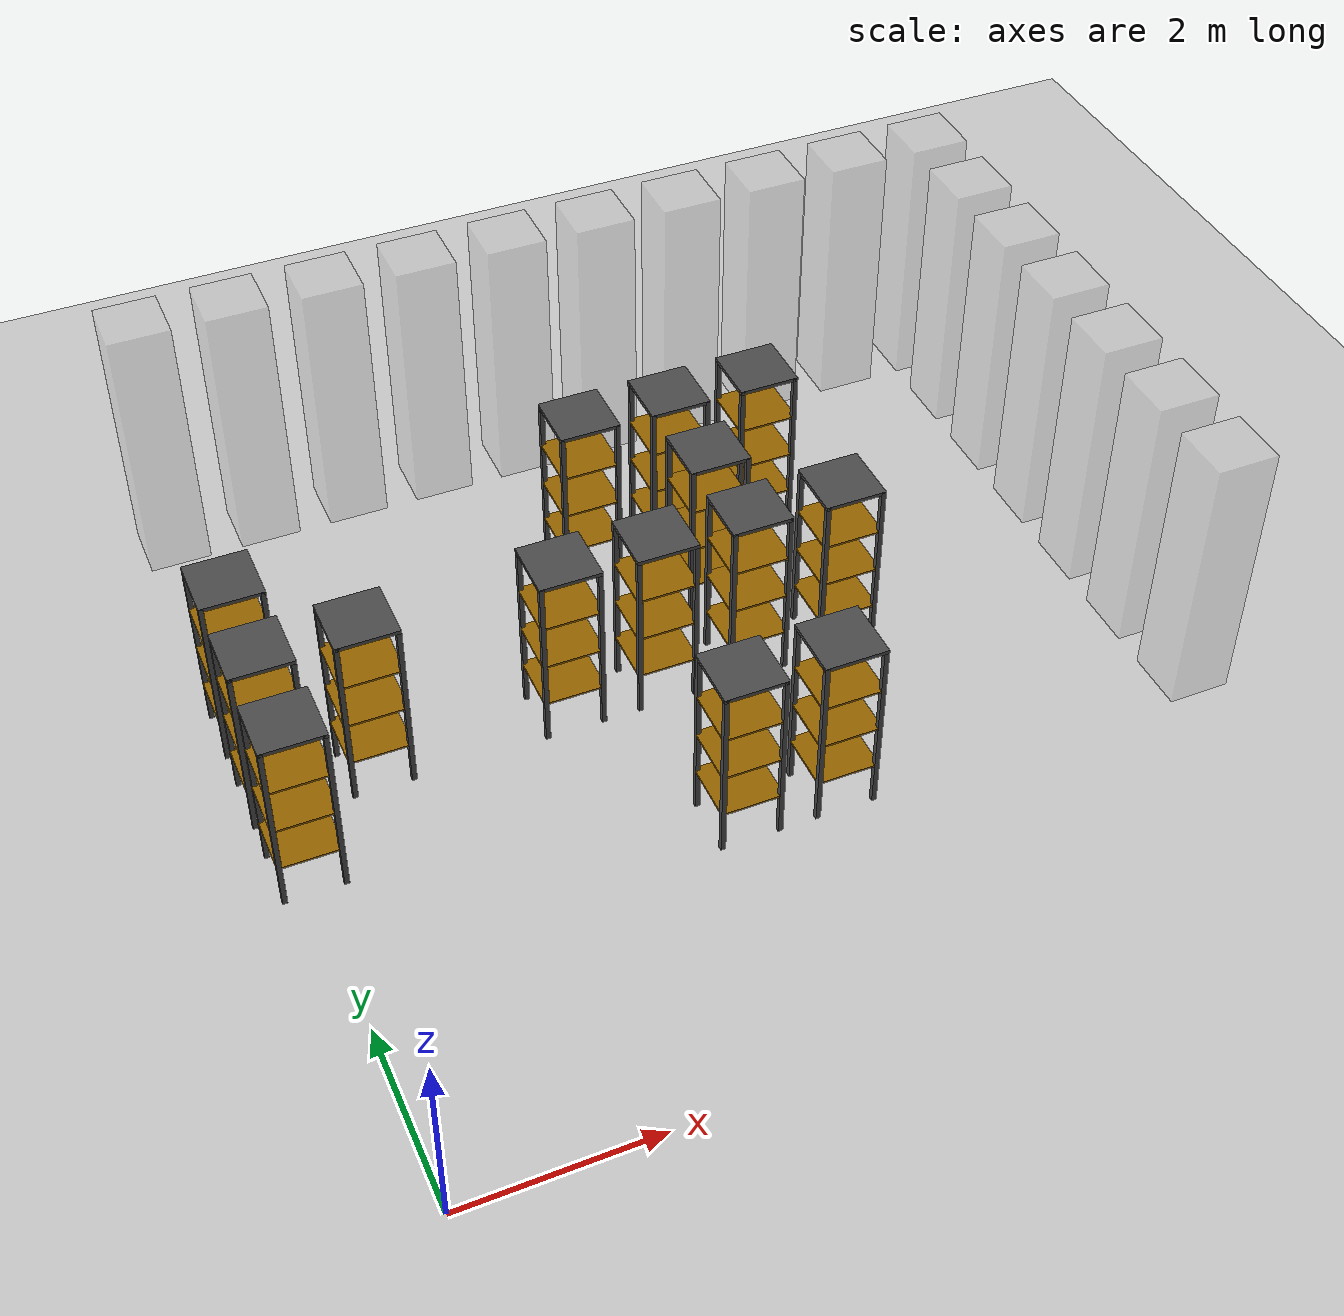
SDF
<sdf version="1.6">
 <world name="default">
  <model name="ground_plane">
   <static>1</static>
   <link name="link">
    <collision name="collision">
     <geometry><plane><normal>0 0 1</normal><size>50 50</size></plane></geometry>
     <surface><friction><ode><mu>100</mu><mu2>50</mu2></ode></friction></surface>
    </collision>
    <visual name="visual">
     <cast_shadows>0</cast_shadows>
     <geometry><plane><normal>0 0 1</normal><size>100 100</size></plane></geometry>
     <material>
      <script><uri>file://media/materials/scripts/gazebo.material</uri><name>Gazebo/Grey</name></script>
     </material>
    </visual>
    <velocity_decay><linear>0</linear><angular>0</angular></velocity_decay>
   </link>
  </model>
  <model name="warehouse_shelf_12_13">
   <static>1</static>
   <link name="main_block">
    <pose>0 0 1.25 0 -0 0</pose>
    <collision name="collision"><geometry><box><size>0.65 0.65 1.5</size></box></geometry></collision>
   </link>
   <link name="leg_1">
    <pose>0.3 0.3 1 0 -0 0</pose>
    <collision name="collision"><geometry><box><size>0.05 0.05 2</size></box></geometry></collision>
    <visual name="visual">
     <geometry><box><size>0.05 0.05 2</size></box></geometry>
     <material><ambient>0.2 0.2 0.2 1</ambient><diffuse>0.3 0.3 0.3 1</diffuse></material>
    </visual>
   </link>
   <link name="leg_2">
    <pose>-0.3 0.3 1 0 -0 0</pose>
    <collision name="collision"><geometry><box><size>0.05 0.05 2</size></box></geometry></collision>
    <visual name="visual">
     <geometry><box><size>0.05 0.05 2</size></box></geometry>
     <material><ambient>0.2 0.2 0.2 1</ambient><diffuse>0.3 0.3 0.3 1</diffuse></material>
    </visual>
   </link>
   <link name="leg_3">
    <pose>-0.3 -0.3 1 0 -0 0</pose>
    <collision name="collision"><geometry><box><size>0.05 0.05 2</size></box></geometry></collision>
    <visual name="visual">
     <geometry><box><size>0.05 0.05 2</size></box></geometry>
     <material><ambient>0.2 0.2 0.2 1</ambient><diffuse>0.3 0.3 0.3 1</diffuse></material>
    </visual>
   </link>
   <link name="leg_4">
    <pose>0.3 -0.3 1 0 -0 0</pose>
    <collision name="collision"><geometry><box><size>0.05 0.05 2</size></box></geometry></collision>
    <visual name="visual">
     <geometry><box><size>0.05 0.05 2</size></box></geometry>
     <material><ambient>0.2 0.2 0.2 1</ambient><diffuse>0.3 0.3 0.3 1</diffuse></material>
    </visual>
   </link>
   <link name="shelf_0">
    <pose>0 0 0.49 0 -0 0</pose>
    <visual name="visual">
     <geometry><box><size>0.649 0.649 0.02</size></box></geometry>
     <material><ambient>0.2 0.05 0 1</ambient><diffuse>0.6 0.4 0 1</diffuse></material>
    </visual>
   </link>
   <link name="shelf_1">
    <pose>0 0 0.99 0 -0 0</pose>
    <visual name="visual">
     <geometry><box><size>0.649 0.649 0.02</size></box></geometry>
     <material><ambient>0.2 0.05 0 1</ambient><diffuse>0.6 0.4 0 1</diffuse></material>
    </visual>
   </link>
   <link name="shelf_2">
    <pose>0 0 1.49 0 -0 0</pose>
    <visual name="visual">
     <geometry><box><size>0.649 0.649 0.02</size></box></geometry>
     <material><ambient>0.2 0.05 0 1</ambient><diffuse>0.6 0.4 0 1</diffuse></material>
    </visual>
   </link>
   <link name="shelf_top">
    <pose>0 0 1.99 0 -0 0</pose>
    <visual name="visual">
     <geometry><box><size>0.65 0.65 0.04</size></box></geometry>
     <material><ambient>0.2 0.2 0.2 1</ambient><diffuse>0.3 0.3 0.3 1</diffuse></material>
    </visual>
   </link>
   <pose>4 3 0 0 -0 0</pose>
  </model>
  <model name="warehouse_shelf_12_14">
   <static>1</static>
   <link name="main_block">
    <pose>0 0 1.25 0 -0 0</pose>
    <collision name="collision"><geometry><box><size>0.65 0.65 1.5</size></box></geometry></collision>
   </link>
   <link name="leg_1">
    <pose>0.3 0.3 1 0 -0 0</pose>
    <collision name="collision"><geometry><box><size>0.05 0.05 2</size></box></geometry></collision>
    <visual name="visual">
     <geometry><box><size>0.05 0.05 2</size></box></geometry>
     <material><ambient>0.2 0.2 0.2 1</ambient><diffuse>0.3 0.3 0.3 1</diffuse></material>
    </visual>
   </link>
   <link name="leg_2">
    <pose>-0.3 0.3 1 0 -0 0</pose>
    <collision name="collision"><geometry><box><size>0.05 0.05 2</size></box></geometry></collision>
    <visual name="visual">
     <geometry><box><size>0.05 0.05 2</size></box></geometry>
     <material><ambient>0.2 0.2 0.2 1</ambient><diffuse>0.3 0.3 0.3 1</diffuse></material>
    </visual>
   </link>
   <link name="leg_3">
    <pose>-0.3 -0.3 1 0 -0 0</pose>
    <collision name="collision"><geometry><box><size>0.05 0.05 2</size></box></geometry></collision>
    <visual name="visual">
     <geometry><box><size>0.05 0.05 2</size></box></geometry>
     <material><ambient>0.2 0.2 0.2 1</ambient><diffuse>0.3 0.3 0.3 1</diffuse></material>
    </visual>
   </link>
   <link name="leg_4">
    <pose>0.3 -0.3 1 0 -0 0</pose>
    <collision name="collision"><geometry><box><size>0.05 0.05 2</size></box></geometry></collision>
    <visual name="visual">
     <geometry><box><size>0.05 0.05 2</size></box></geometry>
     <material><ambient>0.2 0.2 0.2 1</ambient><diffuse>0.3 0.3 0.3 1</diffuse></material>
    </visual>
   </link>
   <link name="shelf_0">
    <pose>0 0 0.49 0 -0 0</pose>
    <visual name="visual">
     <geometry><box><size>0.649 0.649 0.02</size></box></geometry>
     <material><ambient>0.2 0.05 0 1</ambient><diffuse>0.6 0.4 0 1</diffuse></material>
    </visual>
   </link>
   <link name="shelf_1">
    <pose>0 0 0.99 0 -0 0</pose>
    <visual name="visual">
     <geometry><box><size>0.649 0.649 0.02</size></box></geometry>
     <material><ambient>0.2 0.05 0 1</ambient><diffuse>0.6 0.4 0 1</diffuse></material>
    </visual>
   </link>
   <link name="shelf_2">
    <pose>0 0 1.49 0 -0 0</pose>
    <visual name="visual">
     <geometry><box><size>0.649 0.649 0.02</size></box></geometry>
     <material><ambient>0.2 0.05 0 1</ambient><diffuse>0.6 0.4 0 1</diffuse></material>
    </visual>
   </link>
   <link name="shelf_top">
    <pose>0 0 1.99 0 -0 0</pose>
    <visual name="visual">
     <geometry><box><size>0.65 0.65 0.04</size></box></geometry>
     <material><ambient>0.2 0.2 0.2 1</ambient><diffuse>0.3 0.3 0.3 1</diffuse></material>
    </visual>
   </link>
   <pose>5 3 0 0 -0 0</pose>
  </model>
  <model name="pole_12_18">
   <static>1</static>
   <link name="main_block">
    <pose>0 0 1.5 0 -0 0</pose>
    <collision name="collision"><geometry><box><size>0.65 0.65 3</size></box></geometry></collision>
    <visual name="visual">
     <geometry><box><size>0.65 0.65 3</size></box></geometry>
     <material><ambient>0.5 0.5 0.5 0.25</ambient><diffuse>0.75 0.75 0.75 0.25</diffuse></material>
    </visual>
   </link>
   <pose>9 3 0 0 -0 0</pose>
  </model>
  <model name="warehouse_shelf_13_9">
   <static>1</static>
   <link name="main_block">
    <pose>0 0 1.25 0 -0 0</pose>
    <collision name="collision"><geometry><box><size>0.65 0.65 1.5</size></box></geometry></collision>
   </link>
   <link name="leg_1">
    <pose>0.3 0.3 1 0 -0 0</pose>
    <collision name="collision"><geometry><box><size>0.05 0.05 2</size></box></geometry></collision>
    <visual name="visual">
     <geometry><box><size>0.05 0.05 2</size></box></geometry>
     <material><ambient>0.2 0.2 0.2 1</ambient><diffuse>0.3 0.3 0.3 1</diffuse></material>
    </visual>
   </link>
   <link name="leg_2">
    <pose>-0.3 0.3 1 0 -0 0</pose>
    <collision name="collision"><geometry><box><size>0.05 0.05 2</size></box></geometry></collision>
    <visual name="visual">
     <geometry><box><size>0.05 0.05 2</size></box></geometry>
     <material><ambient>0.2 0.2 0.2 1</ambient><diffuse>0.3 0.3 0.3 1</diffuse></material>
    </visual>
   </link>
   <link name="leg_3">
    <pose>-0.3 -0.3 1 0 -0 0</pose>
    <collision name="collision"><geometry><box><size>0.05 0.05 2</size></box></geometry></collision>
    <visual name="visual">
     <geometry><box><size>0.05 0.05 2</size></box></geometry>
     <material><ambient>0.2 0.2 0.2 1</ambient><diffuse>0.3 0.3 0.3 1</diffuse></material>
    </visual>
   </link>
   <link name="leg_4">
    <pose>0.3 -0.3 1 0 -0 0</pose>
    <collision name="collision"><geometry><box><size>0.05 0.05 2</size></box></geometry></collision>
    <visual name="visual">
     <geometry><box><size>0.05 0.05 2</size></box></geometry>
     <material><ambient>0.2 0.2 0.2 1</ambient><diffuse>0.3 0.3 0.3 1</diffuse></material>
    </visual>
   </link>
   <link name="shelf_0">
    <pose>0 0 0.49 0 -0 0</pose>
    <visual name="visual">
     <geometry><box><size>0.649 0.649 0.02</size></box></geometry>
     <material><ambient>0.2 0.05 0 1</ambient><diffuse>0.6 0.4 0 1</diffuse></material>
    </visual>
   </link>
   <link name="shelf_1">
    <pose>0 0 0.99 0 -0 0</pose>
    <visual name="visual">
     <geometry><box><size>0.649 0.649 0.02</size></box></geometry>
     <material><ambient>0.2 0.05 0 1</ambient><diffuse>0.6 0.4 0 1</diffuse></material>
    </visual>
   </link>
   <link name="shelf_2">
    <pose>0 0 1.49 0 -0 0</pose>
    <visual name="visual">
     <geometry><box><size>0.649 0.649 0.02</size></box></geometry>
     <material><ambient>0.2 0.05 0 1</ambient><diffuse>0.6 0.4 0 1</diffuse></material>
    </visual>
   </link>
   <link name="shelf_top">
    <pose>0 0 1.99 0 -0 0</pose>
    <visual name="visual">
     <geometry><box><size>0.65 0.65 0.04</size></box></geometry>
     <material><ambient>0.2 0.2 0.2 1</ambient><diffuse>0.3 0.3 0.3 1</diffuse></material>
    </visual>
   </link>
   <pose>0 4 0 0 -0 0</pose>
  </model>
  <model name="pole_13_18">
   <static>1</static>
   <link name="main_block">
    <pose>0 0 1.5 0 -0 0</pose>
    <collision name="collision"><geometry><box><size>0.65 0.65 3</size></box></geometry></collision>
    <visual name="visual">
     <geometry><box><size>0.65 0.65 3</size></box></geometry>
     <material><ambient>0.5 0.5 0.5 0.25</ambient><diffuse>0.75 0.75 0.75 0.25</diffuse></material>
    </visual>
   </link>
   <pose>9 4 0 0 -0 0</pose>
  </model>
  <model name="warehouse_shelf_14_9">
   <static>1</static>
   <link name="main_block">
    <pose>0 0 1.25 0 -0 0</pose>
    <collision name="collision"><geometry><box><size>0.65 0.65 1.5</size></box></geometry></collision>
   </link>
   <link name="leg_1">
    <pose>0.3 0.3 1 0 -0 0</pose>
    <collision name="collision"><geometry><box><size>0.05 0.05 2</size></box></geometry></collision>
    <visual name="visual">
     <geometry><box><size>0.05 0.05 2</size></box></geometry>
     <material><ambient>0.2 0.2 0.2 1</ambient><diffuse>0.3 0.3 0.3 1</diffuse></material>
    </visual>
   </link>
   <link name="leg_2">
    <pose>-0.3 0.3 1 0 -0 0</pose>
    <collision name="collision"><geometry><box><size>0.05 0.05 2</size></box></geometry></collision>
    <visual name="visual">
     <geometry><box><size>0.05 0.05 2</size></box></geometry>
     <material><ambient>0.2 0.2 0.2 1</ambient><diffuse>0.3 0.3 0.3 1</diffuse></material>
    </visual>
   </link>
   <link name="leg_3">
    <pose>-0.3 -0.3 1 0 -0 0</pose>
    <collision name="collision"><geometry><box><size>0.05 0.05 2</size></box></geometry></collision>
    <visual name="visual">
     <geometry><box><size>0.05 0.05 2</size></box></geometry>
     <material><ambient>0.2 0.2 0.2 1</ambient><diffuse>0.3 0.3 0.3 1</diffuse></material>
    </visual>
   </link>
   <link name="leg_4">
    <pose>0.3 -0.3 1 0 -0 0</pose>
    <collision name="collision"><geometry><box><size>0.05 0.05 2</size></box></geometry></collision>
    <visual name="visual">
     <geometry><box><size>0.05 0.05 2</size></box></geometry>
     <material><ambient>0.2 0.2 0.2 1</ambient><diffuse>0.3 0.3 0.3 1</diffuse></material>
    </visual>
   </link>
   <link name="shelf_0">
    <pose>0 0 0.49 0 -0 0</pose>
    <visual name="visual">
     <geometry><box><size>0.649 0.649 0.02</size></box></geometry>
     <material><ambient>0.2 0.05 0 1</ambient><diffuse>0.6 0.4 0 1</diffuse></material>
    </visual>
   </link>
   <link name="shelf_1">
    <pose>0 0 0.99 0 -0 0</pose>
    <visual name="visual">
     <geometry><box><size>0.649 0.649 0.02</size></box></geometry>
     <material><ambient>0.2 0.05 0 1</ambient><diffuse>0.6 0.4 0 1</diffuse></material>
    </visual>
   </link>
   <link name="shelf_2">
    <pose>0 0 1.49 0 -0 0</pose>
    <visual name="visual">
     <geometry><box><size>0.649 0.649 0.02</size></box></geometry>
     <material><ambient>0.2 0.05 0 1</ambient><diffuse>0.6 0.4 0 1</diffuse></material>
    </visual>
   </link>
   <link name="shelf_top">
    <pose>0 0 1.99 0 -0 0</pose>
    <visual name="visual">
     <geometry><box><size>0.65 0.65 0.04</size></box></geometry>
     <material><ambient>0.2 0.2 0.2 1</ambient><diffuse>0.3 0.3 0.3 1</diffuse></material>
    </visual>
   </link>
   <pose>0 5 0 0 -0 0</pose>
  </model>
  <model name="warehouse_shelf_14_10">
   <static>1</static>
   <link name="main_block">
    <pose>0 0 1.25 0 -0 0</pose>
    <collision name="collision"><geometry><box><size>0.65 0.65 1.5</size></box></geometry></collision>
   </link>
   <link name="leg_1">
    <pose>0.3 0.3 1 0 -0 0</pose>
    <collision name="collision"><geometry><box><size>0.05 0.05 2</size></box></geometry></collision>
    <visual name="visual">
     <geometry><box><size>0.05 0.05 2</size></box></geometry>
     <material><ambient>0.2 0.2 0.2 1</ambient><diffuse>0.3 0.3 0.3 1</diffuse></material>
    </visual>
   </link>
   <link name="leg_2">
    <pose>-0.3 0.3 1 0 -0 0</pose>
    <collision name="collision"><geometry><box><size>0.05 0.05 2</size></box></geometry></collision>
    <visual name="visual">
     <geometry><box><size>0.05 0.05 2</size></box></geometry>
     <material><ambient>0.2 0.2 0.2 1</ambient><diffuse>0.3 0.3 0.3 1</diffuse></material>
    </visual>
   </link>
   <link name="leg_3">
    <pose>-0.3 -0.3 1 0 -0 0</pose>
    <collision name="collision"><geometry><box><size>0.05 0.05 2</size></box></geometry></collision>
    <visual name="visual">
     <geometry><box><size>0.05 0.05 2</size></box></geometry>
     <material><ambient>0.2 0.2 0.2 1</ambient><diffuse>0.3 0.3 0.3 1</diffuse></material>
    </visual>
   </link>
   <link name="leg_4">
    <pose>0.3 -0.3 1 0 -0 0</pose>
    <collision name="collision"><geometry><box><size>0.05 0.05 2</size></box></geometry></collision>
    <visual name="visual">
     <geometry><box><size>0.05 0.05 2</size></box></geometry>
     <material><ambient>0.2 0.2 0.2 1</ambient><diffuse>0.3 0.3 0.3 1</diffuse></material>
    </visual>
   </link>
   <link name="shelf_0">
    <pose>0 0 0.49 0 -0 0</pose>
    <visual name="visual">
     <geometry><box><size>0.649 0.649 0.02</size></box></geometry>
     <material><ambient>0.2 0.05 0 1</ambient><diffuse>0.6 0.4 0 1</diffuse></material>
    </visual>
   </link>
   <link name="shelf_1">
    <pose>0 0 0.99 0 -0 0</pose>
    <visual name="visual">
     <geometry><box><size>0.649 0.649 0.02</size></box></geometry>
     <material><ambient>0.2 0.05 0 1</ambient><diffuse>0.6 0.4 0 1</diffuse></material>
    </visual>
   </link>
   <link name="shelf_2">
    <pose>0 0 1.49 0 -0 0</pose>
    <visual name="visual">
     <geometry><box><size>0.649 0.649 0.02</size></box></geometry>
     <material><ambient>0.2 0.05 0 1</ambient><diffuse>0.6 0.4 0 1</diffuse></material>
    </visual>
   </link>
   <link name="shelf_top">
    <pose>0 0 1.99 0 -0 0</pose>
    <visual name="visual">
     <geometry><box><size>0.65 0.65 0.04</size></box></geometry>
     <material><ambient>0.2 0.2 0.2 1</ambient><diffuse>0.3 0.3 0.3 1</diffuse></material>
    </visual>
   </link>
   <pose>1 5 0 0 -0 0</pose>
  </model>
  <model name="warehouse_shelf_14_12">
   <static>1</static>
   <link name="main_block">
    <pose>0 0 1.25 0 -0 0</pose>
    <collision name="collision"><geometry><box><size>0.65 0.65 1.5</size></box></geometry></collision>
   </link>
   <link name="leg_1">
    <pose>0.3 0.3 1 0 -0 0</pose>
    <collision name="collision"><geometry><box><size>0.05 0.05 2</size></box></geometry></collision>
    <visual name="visual">
     <geometry><box><size>0.05 0.05 2</size></box></geometry>
     <material><ambient>0.2 0.2 0.2 1</ambient><diffuse>0.3 0.3 0.3 1</diffuse></material>
    </visual>
   </link>
   <link name="leg_2">
    <pose>-0.3 0.3 1 0 -0 0</pose>
    <collision name="collision"><geometry><box><size>0.05 0.05 2</size></box></geometry></collision>
    <visual name="visual">
     <geometry><box><size>0.05 0.05 2</size></box></geometry>
     <material><ambient>0.2 0.2 0.2 1</ambient><diffuse>0.3 0.3 0.3 1</diffuse></material>
    </visual>
   </link>
   <link name="leg_3">
    <pose>-0.3 -0.3 1 0 -0 0</pose>
    <collision name="collision"><geometry><box><size>0.05 0.05 2</size></box></geometry></collision>
    <visual name="visual">
     <geometry><box><size>0.05 0.05 2</size></box></geometry>
     <material><ambient>0.2 0.2 0.2 1</ambient><diffuse>0.3 0.3 0.3 1</diffuse></material>
    </visual>
   </link>
   <link name="leg_4">
    <pose>0.3 -0.3 1 0 -0 0</pose>
    <collision name="collision"><geometry><box><size>0.05 0.05 2</size></box></geometry></collision>
    <visual name="visual">
     <geometry><box><size>0.05 0.05 2</size></box></geometry>
     <material><ambient>0.2 0.2 0.2 1</ambient><diffuse>0.3 0.3 0.3 1</diffuse></material>
    </visual>
   </link>
   <link name="shelf_0">
    <pose>0 0 0.49 0 -0 0</pose>
    <visual name="visual">
     <geometry><box><size>0.649 0.649 0.02</size></box></geometry>
     <material><ambient>0.2 0.05 0 1</ambient><diffuse>0.6 0.4 0 1</diffuse></material>
    </visual>
   </link>
   <link name="shelf_1">
    <pose>0 0 0.99 0 -0 0</pose>
    <visual name="visual">
     <geometry><box><size>0.649 0.649 0.02</size></box></geometry>
     <material><ambient>0.2 0.05 0 1</ambient><diffuse>0.6 0.4 0 1</diffuse></material>
    </visual>
   </link>
   <link name="shelf_2">
    <pose>0 0 1.49 0 -0 0</pose>
    <visual name="visual">
     <geometry><box><size>0.649 0.649 0.02</size></box></geometry>
     <material><ambient>0.2 0.05 0 1</ambient><diffuse>0.6 0.4 0 1</diffuse></material>
    </visual>
   </link>
   <link name="shelf_top">
    <pose>0 0 1.99 0 -0 0</pose>
    <visual name="visual">
     <geometry><box><size>0.65 0.65 0.04</size></box></geometry>
     <material><ambient>0.2 0.2 0.2 1</ambient><diffuse>0.3 0.3 0.3 1</diffuse></material>
    </visual>
   </link>
   <pose>3 5 0 0 -0 0</pose>
  </model>
  <model name="warehouse_shelf_14_13">
   <static>1</static>
   <link name="main_block">
    <pose>0 0 1.25 0 -0 0</pose>
    <collision name="collision"><geometry><box><size>0.65 0.65 1.5</size></box></geometry></collision>
   </link>
   <link name="leg_1">
    <pose>0.3 0.3 1 0 -0 0</pose>
    <collision name="collision"><geometry><box><size>0.05 0.05 2</size></box></geometry></collision>
    <visual name="visual">
     <geometry><box><size>0.05 0.05 2</size></box></geometry>
     <material><ambient>0.2 0.2 0.2 1</ambient><diffuse>0.3 0.3 0.3 1</diffuse></material>
    </visual>
   </link>
   <link name="leg_2">
    <pose>-0.3 0.3 1 0 -0 0</pose>
    <collision name="collision"><geometry><box><size>0.05 0.05 2</size></box></geometry></collision>
    <visual name="visual">
     <geometry><box><size>0.05 0.05 2</size></box></geometry>
     <material><ambient>0.2 0.2 0.2 1</ambient><diffuse>0.3 0.3 0.3 1</diffuse></material>
    </visual>
   </link>
   <link name="leg_3">
    <pose>-0.3 -0.3 1 0 -0 0</pose>
    <collision name="collision"><geometry><box><size>0.05 0.05 2</size></box></geometry></collision>
    <visual name="visual">
     <geometry><box><size>0.05 0.05 2</size></box></geometry>
     <material><ambient>0.2 0.2 0.2 1</ambient><diffuse>0.3 0.3 0.3 1</diffuse></material>
    </visual>
   </link>
   <link name="leg_4">
    <pose>0.3 -0.3 1 0 -0 0</pose>
    <collision name="collision"><geometry><box><size>0.05 0.05 2</size></box></geometry></collision>
    <visual name="visual">
     <geometry><box><size>0.05 0.05 2</size></box></geometry>
     <material><ambient>0.2 0.2 0.2 1</ambient><diffuse>0.3 0.3 0.3 1</diffuse></material>
    </visual>
   </link>
   <link name="shelf_0">
    <pose>0 0 0.49 0 -0 0</pose>
    <visual name="visual">
     <geometry><box><size>0.649 0.649 0.02</size></box></geometry>
     <material><ambient>0.2 0.05 0 1</ambient><diffuse>0.6 0.4 0 1</diffuse></material>
    </visual>
   </link>
   <link name="shelf_1">
    <pose>0 0 0.99 0 -0 0</pose>
    <visual name="visual">
     <geometry><box><size>0.649 0.649 0.02</size></box></geometry>
     <material><ambient>0.2 0.05 0 1</ambient><diffuse>0.6 0.4 0 1</diffuse></material>
    </visual>
   </link>
   <link name="shelf_2">
    <pose>0 0 1.49 0 -0 0</pose>
    <visual name="visual">
     <geometry><box><size>0.649 0.649 0.02</size></box></geometry>
     <material><ambient>0.2 0.05 0 1</ambient><diffuse>0.6 0.4 0 1</diffuse></material>
    </visual>
   </link>
   <link name="shelf_top">
    <pose>0 0 1.99 0 -0 0</pose>
    <visual name="visual">
     <geometry><box><size>0.65 0.65 0.04</size></box></geometry>
     <material><ambient>0.2 0.2 0.2 1</ambient><diffuse>0.3 0.3 0.3 1</diffuse></material>
    </visual>
   </link>
   <pose>4 5 0 0 -0 0</pose>
  </model>
  <model name="warehouse_shelf_14_14">
   <static>1</static>
   <link name="main_block">
    <pose>0 0 1.25 0 -0 0</pose>
    <collision name="collision"><geometry><box><size>0.65 0.65 1.5</size></box></geometry></collision>
   </link>
   <link name="leg_1">
    <pose>0.3 0.3 1 0 -0 0</pose>
    <collision name="collision"><geometry><box><size>0.05 0.05 2</size></box></geometry></collision>
    <visual name="visual">
     <geometry><box><size>0.05 0.05 2</size></box></geometry>
     <material><ambient>0.2 0.2 0.2 1</ambient><diffuse>0.3 0.3 0.3 1</diffuse></material>
    </visual>
   </link>
   <link name="leg_2">
    <pose>-0.3 0.3 1 0 -0 0</pose>
    <collision name="collision"><geometry><box><size>0.05 0.05 2</size></box></geometry></collision>
    <visual name="visual">
     <geometry><box><size>0.05 0.05 2</size></box></geometry>
     <material><ambient>0.2 0.2 0.2 1</ambient><diffuse>0.3 0.3 0.3 1</diffuse></material>
    </visual>
   </link>
   <link name="leg_3">
    <pose>-0.3 -0.3 1 0 -0 0</pose>
    <collision name="collision"><geometry><box><size>0.05 0.05 2</size></box></geometry></collision>
    <visual name="visual">
     <geometry><box><size>0.05 0.05 2</size></box></geometry>
     <material><ambient>0.2 0.2 0.2 1</ambient><diffuse>0.3 0.3 0.3 1</diffuse></material>
    </visual>
   </link>
   <link name="leg_4">
    <pose>0.3 -0.3 1 0 -0 0</pose>
    <collision name="collision"><geometry><box><size>0.05 0.05 2</size></box></geometry></collision>
    <visual name="visual">
     <geometry><box><size>0.05 0.05 2</size></box></geometry>
     <material><ambient>0.2 0.2 0.2 1</ambient><diffuse>0.3 0.3 0.3 1</diffuse></material>
    </visual>
   </link>
   <link name="shelf_0">
    <pose>0 0 0.49 0 -0 0</pose>
    <visual name="visual">
     <geometry><box><size>0.649 0.649 0.02</size></box></geometry>
     <material><ambient>0.2 0.05 0 1</ambient><diffuse>0.6 0.4 0 1</diffuse></material>
    </visual>
   </link>
   <link name="shelf_1">
    <pose>0 0 0.99 0 -0 0</pose>
    <visual name="visual">
     <geometry><box><size>0.649 0.649 0.02</size></box></geometry>
     <material><ambient>0.2 0.05 0 1</ambient><diffuse>0.6 0.4 0 1</diffuse></material>
    </visual>
   </link>
   <link name="shelf_2">
    <pose>0 0 1.49 0 -0 0</pose>
    <visual name="visual">
     <geometry><box><size>0.649 0.649 0.02</size></box></geometry>
     <material><ambient>0.2 0.05 0 1</ambient><diffuse>0.6 0.4 0 1</diffuse></material>
    </visual>
   </link>
   <link name="shelf_top">
    <pose>0 0 1.99 0 -0 0</pose>
    <visual name="visual">
     <geometry><box><size>0.65 0.65 0.04</size></box></geometry>
     <material><ambient>0.2 0.2 0.2 1</ambient><diffuse>0.3 0.3 0.3 1</diffuse></material>
    </visual>
   </link>
   <pose>5 5 0 0 -0 0</pose>
  </model>
  <model name="warehouse_shelf_14_15">
   <static>1</static>
   <link name="main_block">
    <pose>0 0 1.25 0 -0 0</pose>
    <collision name="collision"><geometry><box><size>0.65 0.65 1.5</size></box></geometry></collision>
   </link>
   <link name="leg_1">
    <pose>0.3 0.3 1 0 -0 0</pose>
    <collision name="collision"><geometry><box><size>0.05 0.05 2</size></box></geometry></collision>
    <visual name="visual">
     <geometry><box><size>0.05 0.05 2</size></box></geometry>
     <material><ambient>0.2 0.2 0.2 1</ambient><diffuse>0.3 0.3 0.3 1</diffuse></material>
    </visual>
   </link>
   <link name="leg_2">
    <pose>-0.3 0.3 1 0 -0 0</pose>
    <collision name="collision"><geometry><box><size>0.05 0.05 2</size></box></geometry></collision>
    <visual name="visual">
     <geometry><box><size>0.05 0.05 2</size></box></geometry>
     <material><ambient>0.2 0.2 0.2 1</ambient><diffuse>0.3 0.3 0.3 1</diffuse></material>
    </visual>
   </link>
   <link name="leg_3">
    <pose>-0.3 -0.3 1 0 -0 0</pose>
    <collision name="collision"><geometry><box><size>0.05 0.05 2</size></box></geometry></collision>
    <visual name="visual">
     <geometry><box><size>0.05 0.05 2</size></box></geometry>
     <material><ambient>0.2 0.2 0.2 1</ambient><diffuse>0.3 0.3 0.3 1</diffuse></material>
    </visual>
   </link>
   <link name="leg_4">
    <pose>0.3 -0.3 1 0 -0 0</pose>
    <collision name="collision"><geometry><box><size>0.05 0.05 2</size></box></geometry></collision>
    <visual name="visual">
     <geometry><box><size>0.05 0.05 2</size></box></geometry>
     <material><ambient>0.2 0.2 0.2 1</ambient><diffuse>0.3 0.3 0.3 1</diffuse></material>
    </visual>
   </link>
   <link name="shelf_0">
    <pose>0 0 0.49 0 -0 0</pose>
    <visual name="visual">
     <geometry><box><size>0.649 0.649 0.02</size></box></geometry>
     <material><ambient>0.2 0.05 0 1</ambient><diffuse>0.6 0.4 0 1</diffuse></material>
    </visual>
   </link>
   <link name="shelf_1">
    <pose>0 0 0.99 0 -0 0</pose>
    <visual name="visual">
     <geometry><box><size>0.649 0.649 0.02</size></box></geometry>
     <material><ambient>0.2 0.05 0 1</ambient><diffuse>0.6 0.4 0 1</diffuse></material>
    </visual>
   </link>
   <link name="shelf_2">
    <pose>0 0 1.49 0 -0 0</pose>
    <visual name="visual">
     <geometry><box><size>0.649 0.649 0.02</size></box></geometry>
     <material><ambient>0.2 0.05 0 1</ambient><diffuse>0.6 0.4 0 1</diffuse></material>
    </visual>
   </link>
   <link name="shelf_top">
    <pose>0 0 1.99 0 -0 0</pose>
    <visual name="visual">
     <geometry><box><size>0.65 0.65 0.04</size></box></geometry>
     <material><ambient>0.2 0.2 0.2 1</ambient><diffuse>0.3 0.3 0.3 1</diffuse></material>
    </visual>
   </link>
   <pose>6 5 0 0 -0 0</pose>
  </model>
  <model name="pole_14_18">
   <static>1</static>
   <link name="main_block">
    <pose>0 0 1.5 0 -0 0</pose>
    <collision name="collision"><geometry><box><size>0.65 0.65 3</size></box></geometry></collision>
    <visual name="visual">
     <geometry><box><size>0.65 0.65 3</size></box></geometry>
     <material><ambient>0.5 0.5 0.5 0.25</ambient><diffuse>0.75 0.75 0.75 0.25</diffuse></material>
    </visual>
   </link>
   <pose>9 5 0 0 -0 0</pose>
  </model>
  <model name="warehouse_shelf_15_9">
   <static>1</static>
   <link name="main_block">
    <pose>0 0 1.25 0 -0 0</pose>
    <collision name="collision"><geometry><box><size>0.65 0.65 1.5</size></box></geometry></collision>
   </link>
   <link name="leg_1">
    <pose>0.3 0.3 1 0 -0 0</pose>
    <collision name="collision"><geometry><box><size>0.05 0.05 2</size></box></geometry></collision>
    <visual name="visual">
     <geometry><box><size>0.05 0.05 2</size></box></geometry>
     <material><ambient>0.2 0.2 0.2 1</ambient><diffuse>0.3 0.3 0.3 1</diffuse></material>
    </visual>
   </link>
   <link name="leg_2">
    <pose>-0.3 0.3 1 0 -0 0</pose>
    <collision name="collision"><geometry><box><size>0.05 0.05 2</size></box></geometry></collision>
    <visual name="visual">
     <geometry><box><size>0.05 0.05 2</size></box></geometry>
     <material><ambient>0.2 0.2 0.2 1</ambient><diffuse>0.3 0.3 0.3 1</diffuse></material>
    </visual>
   </link>
   <link name="leg_3">
    <pose>-0.3 -0.3 1 0 -0 0</pose>
    <collision name="collision"><geometry><box><size>0.05 0.05 2</size></box></geometry></collision>
    <visual name="visual">
     <geometry><box><size>0.05 0.05 2</size></box></geometry>
     <material><ambient>0.2 0.2 0.2 1</ambient><diffuse>0.3 0.3 0.3 1</diffuse></material>
    </visual>
   </link>
   <link name="leg_4">
    <pose>0.3 -0.3 1 0 -0 0</pose>
    <collision name="collision"><geometry><box><size>0.05 0.05 2</size></box></geometry></collision>
    <visual name="visual">
     <geometry><box><size>0.05 0.05 2</size></box></geometry>
     <material><ambient>0.2 0.2 0.2 1</ambient><diffuse>0.3 0.3 0.3 1</diffuse></material>
    </visual>
   </link>
   <link name="shelf_0">
    <pose>0 0 0.49 0 -0 0</pose>
    <visual name="visual">
     <geometry><box><size>0.649 0.649 0.02</size></box></geometry>
     <material><ambient>0.2 0.05 0 1</ambient><diffuse>0.6 0.4 0 1</diffuse></material>
    </visual>
   </link>
   <link name="shelf_1">
    <pose>0 0 0.99 0 -0 0</pose>
    <visual name="visual">
     <geometry><box><size>0.649 0.649 0.02</size></box></geometry>
     <material><ambient>0.2 0.05 0 1</ambient><diffuse>0.6 0.4 0 1</diffuse></material>
    </visual>
   </link>
   <link name="shelf_2">
    <pose>0 0 1.49 0 -0 0</pose>
    <visual name="visual">
     <geometry><box><size>0.649 0.649 0.02</size></box></geometry>
     <material><ambient>0.2 0.05 0 1</ambient><diffuse>0.6 0.4 0 1</diffuse></material>
    </visual>
   </link>
   <link name="shelf_top">
    <pose>0 0 1.99 0 -0 0</pose>
    <visual name="visual">
     <geometry><box><size>0.65 0.65 0.04</size></box></geometry>
     <material><ambient>0.2 0.2 0.2 1</ambient><diffuse>0.3 0.3 0.3 1</diffuse></material>
    </visual>
   </link>
   <pose>0 6 0 0 -0 0</pose>
  </model>
  <model name="warehouse_shelf_15_14">
   <static>1</static>
   <link name="main_block">
    <pose>0 0 1.25 0 -0 0</pose>
    <collision name="collision"><geometry><box><size>0.65 0.65 1.5</size></box></geometry></collision>
   </link>
   <link name="leg_1">
    <pose>0.3 0.3 1 0 -0 0</pose>
    <collision name="collision"><geometry><box><size>0.05 0.05 2</size></box></geometry></collision>
    <visual name="visual">
     <geometry><box><size>0.05 0.05 2</size></box></geometry>
     <material><ambient>0.2 0.2 0.2 1</ambient><diffuse>0.3 0.3 0.3 1</diffuse></material>
    </visual>
   </link>
   <link name="leg_2">
    <pose>-0.3 0.3 1 0 -0 0</pose>
    <collision name="collision"><geometry><box><size>0.05 0.05 2</size></box></geometry></collision>
    <visual name="visual">
     <geometry><box><size>0.05 0.05 2</size></box></geometry>
     <material><ambient>0.2 0.2 0.2 1</ambient><diffuse>0.3 0.3 0.3 1</diffuse></material>
    </visual>
   </link>
   <link name="leg_3">
    <pose>-0.3 -0.3 1 0 -0 0</pose>
    <collision name="collision"><geometry><box><size>0.05 0.05 2</size></box></geometry></collision>
    <visual name="visual">
     <geometry><box><size>0.05 0.05 2</size></box></geometry>
     <material><ambient>0.2 0.2 0.2 1</ambient><diffuse>0.3 0.3 0.3 1</diffuse></material>
    </visual>
   </link>
   <link name="leg_4">
    <pose>0.3 -0.3 1 0 -0 0</pose>
    <collision name="collision"><geometry><box><size>0.05 0.05 2</size></box></geometry></collision>
    <visual name="visual">
     <geometry><box><size>0.05 0.05 2</size></box></geometry>
     <material><ambient>0.2 0.2 0.2 1</ambient><diffuse>0.3 0.3 0.3 1</diffuse></material>
    </visual>
   </link>
   <link name="shelf_0">
    <pose>0 0 0.49 0 -0 0</pose>
    <visual name="visual">
     <geometry><box><size>0.649 0.649 0.02</size></box></geometry>
     <material><ambient>0.2 0.05 0 1</ambient><diffuse>0.6 0.4 0 1</diffuse></material>
    </visual>
   </link>
   <link name="shelf_1">
    <pose>0 0 0.99 0 -0 0</pose>
    <visual name="visual">
     <geometry><box><size>0.649 0.649 0.02</size></box></geometry>
     <material><ambient>0.2 0.05 0 1</ambient><diffuse>0.6 0.4 0 1</diffuse></material>
    </visual>
   </link>
   <link name="shelf_2">
    <pose>0 0 1.49 0 -0 0</pose>
    <visual name="visual">
     <geometry><box><size>0.649 0.649 0.02</size></box></geometry>
     <material><ambient>0.2 0.05 0 1</ambient><diffuse>0.6 0.4 0 1</diffuse></material>
    </visual>
   </link>
   <link name="shelf_top">
    <pose>0 0 1.99 0 -0 0</pose>
    <visual name="visual">
     <geometry><box><size>0.65 0.65 0.04</size></box></geometry>
     <material><ambient>0.2 0.2 0.2 1</ambient><diffuse>0.3 0.3 0.3 1</diffuse></material>
    </visual>
   </link>
   <pose>5 6 0 0 -0 0</pose>
  </model>
  <model name="pole_15_18">
   <static>1</static>
   <link name="main_block">
    <pose>0 0 1.5 0 -0 0</pose>
    <collision name="collision"><geometry><box><size>0.65 0.65 3</size></box></geometry></collision>
    <visual name="visual">
     <geometry><box><size>0.65 0.65 3</size></box></geometry>
     <material><ambient>0.5 0.5 0.5 0.25</ambient><diffuse>0.75 0.75 0.75 0.25</diffuse></material>
    </visual>
   </link>
   <pose>9 6 0 0 -0 0</pose>
  </model>
  <model name="warehouse_shelf_16_13">
   <static>1</static>
   <link name="main_block">
    <pose>0 0 1.25 0 -0 0</pose>
    <collision name="collision"><geometry><box><size>0.65 0.65 1.5</size></box></geometry></collision>
   </link>
   <link name="leg_1">
    <pose>0.3 0.3 1 0 -0 0</pose>
    <collision name="collision"><geometry><box><size>0.05 0.05 2</size></box></geometry></collision>
    <visual name="visual">
     <geometry><box><size>0.05 0.05 2</size></box></geometry>
     <material><ambient>0.2 0.2 0.2 1</ambient><diffuse>0.3 0.3 0.3 1</diffuse></material>
    </visual>
   </link>
   <link name="leg_2">
    <pose>-0.3 0.3 1 0 -0 0</pose>
    <collision name="collision"><geometry><box><size>0.05 0.05 2</size></box></geometry></collision>
    <visual name="visual">
     <geometry><box><size>0.05 0.05 2</size></box></geometry>
     <material><ambient>0.2 0.2 0.2 1</ambient><diffuse>0.3 0.3 0.3 1</diffuse></material>
    </visual>
   </link>
   <link name="leg_3">
    <pose>-0.3 -0.3 1 0 -0 0</pose>
    <collision name="collision"><geometry><box><size>0.05 0.05 2</size></box></geometry></collision>
    <visual name="visual">
     <geometry><box><size>0.05 0.05 2</size></box></geometry>
     <material><ambient>0.2 0.2 0.2 1</ambient><diffuse>0.3 0.3 0.3 1</diffuse></material>
    </visual>
   </link>
   <link name="leg_4">
    <pose>0.3 -0.3 1 0 -0 0</pose>
    <collision name="collision"><geometry><box><size>0.05 0.05 2</size></box></geometry></collision>
    <visual name="visual">
     <geometry><box><size>0.05 0.05 2</size></box></geometry>
     <material><ambient>0.2 0.2 0.2 1</ambient><diffuse>0.3 0.3 0.3 1</diffuse></material>
    </visual>
   </link>
   <link name="shelf_0">
    <pose>0 0 0.49 0 -0 0</pose>
    <visual name="visual">
     <geometry><box><size>0.649 0.649 0.02</size></box></geometry>
     <material><ambient>0.2 0.05 0 1</ambient><diffuse>0.6 0.4 0 1</diffuse></material>
    </visual>
   </link>
   <link name="shelf_1">
    <pose>0 0 0.99 0 -0 0</pose>
    <visual name="visual">
     <geometry><box><size>0.649 0.649 0.02</size></box></geometry>
     <material><ambient>0.2 0.05 0 1</ambient><diffuse>0.6 0.4 0 1</diffuse></material>
    </visual>
   </link>
   <link name="shelf_2">
    <pose>0 0 1.49 0 -0 0</pose>
    <visual name="visual">
     <geometry><box><size>0.649 0.649 0.02</size></box></geometry>
     <material><ambient>0.2 0.05 0 1</ambient><diffuse>0.6 0.4 0 1</diffuse></material>
    </visual>
   </link>
   <link name="shelf_top">
    <pose>0 0 1.99 0 -0 0</pose>
    <visual name="visual">
     <geometry><box><size>0.65 0.65 0.04</size></box></geometry>
     <material><ambient>0.2 0.2 0.2 1</ambient><diffuse>0.3 0.3 0.3 1</diffuse></material>
    </visual>
   </link>
   <pose>4 7 0 0 -0 0</pose>
  </model>
  <model name="warehouse_shelf_16_14">
   <static>1</static>
   <link name="main_block">
    <pose>0 0 1.25 0 -0 0</pose>
    <collision name="collision"><geometry><box><size>0.65 0.65 1.5</size></box></geometry></collision>
   </link>
   <link name="leg_1">
    <pose>0.3 0.3 1 0 -0 0</pose>
    <collision name="collision"><geometry><box><size>0.05 0.05 2</size></box></geometry></collision>
    <visual name="visual">
     <geometry><box><size>0.05 0.05 2</size></box></geometry>
     <material><ambient>0.2 0.2 0.2 1</ambient><diffuse>0.3 0.3 0.3 1</diffuse></material>
    </visual>
   </link>
   <link name="leg_2">
    <pose>-0.3 0.3 1 0 -0 0</pose>
    <collision name="collision"><geometry><box><size>0.05 0.05 2</size></box></geometry></collision>
    <visual name="visual">
     <geometry><box><size>0.05 0.05 2</size></box></geometry>
     <material><ambient>0.2 0.2 0.2 1</ambient><diffuse>0.3 0.3 0.3 1</diffuse></material>
    </visual>
   </link>
   <link name="leg_3">
    <pose>-0.3 -0.3 1 0 -0 0</pose>
    <collision name="collision"><geometry><box><size>0.05 0.05 2</size></box></geometry></collision>
    <visual name="visual">
     <geometry><box><size>0.05 0.05 2</size></box></geometry>
     <material><ambient>0.2 0.2 0.2 1</ambient><diffuse>0.3 0.3 0.3 1</diffuse></material>
    </visual>
   </link>
   <link name="leg_4">
    <pose>0.3 -0.3 1 0 -0 0</pose>
    <collision name="collision"><geometry><box><size>0.05 0.05 2</size></box></geometry></collision>
    <visual name="visual">
     <geometry><box><size>0.05 0.05 2</size></box></geometry>
     <material><ambient>0.2 0.2 0.2 1</ambient><diffuse>0.3 0.3 0.3 1</diffuse></material>
    </visual>
   </link>
   <link name="shelf_0">
    <pose>0 0 0.49 0 -0 0</pose>
    <visual name="visual">
     <geometry><box><size>0.649 0.649 0.02</size></box></geometry>
     <material><ambient>0.2 0.05 0 1</ambient><diffuse>0.6 0.4 0 1</diffuse></material>
    </visual>
   </link>
   <link name="shelf_1">
    <pose>0 0 0.99 0 -0 0</pose>
    <visual name="visual">
     <geometry><box><size>0.649 0.649 0.02</size></box></geometry>
     <material><ambient>0.2 0.05 0 1</ambient><diffuse>0.6 0.4 0 1</diffuse></material>
    </visual>
   </link>
   <link name="shelf_2">
    <pose>0 0 1.49 0 -0 0</pose>
    <visual name="visual">
     <geometry><box><size>0.649 0.649 0.02</size></box></geometry>
     <material><ambient>0.2 0.05 0 1</ambient><diffuse>0.6 0.4 0 1</diffuse></material>
    </visual>
   </link>
   <link name="shelf_top">
    <pose>0 0 1.99 0 -0 0</pose>
    <visual name="visual">
     <geometry><box><size>0.65 0.65 0.04</size></box></geometry>
     <material><ambient>0.2 0.2 0.2 1</ambient><diffuse>0.3 0.3 0.3 1</diffuse></material>
    </visual>
   </link>
   <pose>5 7 0 0 -0 0</pose>
  </model>
  <model name="warehouse_shelf_16_15">
   <static>1</static>
   <link name="main_block">
    <pose>0 0 1.25 0 -0 0</pose>
    <collision name="collision"><geometry><box><size>0.65 0.65 1.5</size></box></geometry></collision>
   </link>
   <link name="leg_1">
    <pose>0.3 0.3 1 0 -0 0</pose>
    <collision name="collision"><geometry><box><size>0.05 0.05 2</size></box></geometry></collision>
    <visual name="visual">
     <geometry><box><size>0.05 0.05 2</size></box></geometry>
     <material><ambient>0.2 0.2 0.2 1</ambient><diffuse>0.3 0.3 0.3 1</diffuse></material>
    </visual>
   </link>
   <link name="leg_2">
    <pose>-0.3 0.3 1 0 -0 0</pose>
    <collision name="collision"><geometry><box><size>0.05 0.05 2</size></box></geometry></collision>
    <visual name="visual">
     <geometry><box><size>0.05 0.05 2</size></box></geometry>
     <material><ambient>0.2 0.2 0.2 1</ambient><diffuse>0.3 0.3 0.3 1</diffuse></material>
    </visual>
   </link>
   <link name="leg_3">
    <pose>-0.3 -0.3 1 0 -0 0</pose>
    <collision name="collision"><geometry><box><size>0.05 0.05 2</size></box></geometry></collision>
    <visual name="visual">
     <geometry><box><size>0.05 0.05 2</size></box></geometry>
     <material><ambient>0.2 0.2 0.2 1</ambient><diffuse>0.3 0.3 0.3 1</diffuse></material>
    </visual>
   </link>
   <link name="leg_4">
    <pose>0.3 -0.3 1 0 -0 0</pose>
    <collision name="collision"><geometry><box><size>0.05 0.05 2</size></box></geometry></collision>
    <visual name="visual">
     <geometry><box><size>0.05 0.05 2</size></box></geometry>
     <material><ambient>0.2 0.2 0.2 1</ambient><diffuse>0.3 0.3 0.3 1</diffuse></material>
    </visual>
   </link>
   <link name="shelf_0">
    <pose>0 0 0.49 0 -0 0</pose>
    <visual name="visual">
     <geometry><box><size>0.649 0.649 0.02</size></box></geometry>
     <material><ambient>0.2 0.05 0 1</ambient><diffuse>0.6 0.4 0 1</diffuse></material>
    </visual>
   </link>
   <link name="shelf_1">
    <pose>0 0 0.99 0 -0 0</pose>
    <visual name="visual">
     <geometry><box><size>0.649 0.649 0.02</size></box></geometry>
     <material><ambient>0.2 0.05 0 1</ambient><diffuse>0.6 0.4 0 1</diffuse></material>
    </visual>
   </link>
   <link name="shelf_2">
    <pose>0 0 1.49 0 -0 0</pose>
    <visual name="visual">
     <geometry><box><size>0.649 0.649 0.02</size></box></geometry>
     <material><ambient>0.2 0.05 0 1</ambient><diffuse>0.6 0.4 0 1</diffuse></material>
    </visual>
   </link>
   <link name="shelf_top">
    <pose>0 0 1.99 0 -0 0</pose>
    <visual name="visual">
     <geometry><box><size>0.65 0.65 0.04</size></box></geometry>
     <material><ambient>0.2 0.2 0.2 1</ambient><diffuse>0.3 0.3 0.3 1</diffuse></material>
    </visual>
   </link>
   <pose>6 7 0 0 -0 0</pose>
  </model>
  <model name="pole_16_18">
   <static>1</static>
   <link name="main_block">
    <pose>0 0 1.5 0 -0 0</pose>
    <collision name="collision"><geometry><box><size>0.65 0.65 3</size></box></geometry></collision>
    <visual name="visual">
     <geometry><box><size>0.65 0.65 3</size></box></geometry>
     <material><ambient>0.5 0.5 0.5 0.25</ambient><diffuse>0.75 0.75 0.75 0.25</diffuse></material>
    </visual>
   </link>
   <pose>9 7 0 0 -0 0</pose>
  </model>
  <model name="pole_17_18">
   <static>1</static>
   <link name="main_block">
    <pose>0 0 1.5 0 -0 0</pose>
    <collision name="collision"><geometry><box><size>0.65 0.65 3</size></box></geometry></collision>
    <visual name="visual">
     <geometry><box><size>0.65 0.65 3</size></box></geometry>
     <material><ambient>0.5 0.5 0.5 0.25</ambient><diffuse>0.75 0.75 0.75 0.25</diffuse></material>
    </visual>
   </link>
   <pose>9 8 0 0 -0 0</pose>
  </model>
  <model name="pole_18_9">
   <static>1</static>
   <link name="main_block">
    <pose>0 0 1.5 0 -0 0</pose>
    <collision name="collision"><geometry><box><size>0.65 0.65 3</size></box></geometry></collision>
    <visual name="visual">
     <geometry><box><size>0.65 0.65 3</size></box></geometry>
     <material><ambient>0.5 0.5 0.5 0.25</ambient><diffuse>0.75 0.75 0.75 0.25</diffuse></material>
    </visual>
   </link>
   <pose>0 9 0 0 -0 0</pose>
  </model>
  <model name="pole_18_10">
   <static>1</static>
   <link name="main_block">
    <pose>0 0 1.5 0 -0 0</pose>
    <collision name="collision"><geometry><box><size>0.65 0.65 3</size></box></geometry></collision>
    <visual name="visual">
     <geometry><box><size>0.65 0.65 3</size></box></geometry>
     <material><ambient>0.5 0.5 0.5 0.25</ambient><diffuse>0.75 0.75 0.75 0.25</diffuse></material>
    </visual>
   </link>
   <pose>1 9 0 0 -0 0</pose>
  </model>
  <model name="pole_18_11">
   <static>1</static>
   <link name="main_block">
    <pose>0 0 1.5 0 -0 0</pose>
    <collision name="collision"><geometry><box><size>0.65 0.65 3</size></box></geometry></collision>
    <visual name="visual">
     <geometry><box><size>0.65 0.65 3</size></box></geometry>
     <material><ambient>0.5 0.5 0.5 0.25</ambient><diffuse>0.75 0.75 0.75 0.25</diffuse></material>
    </visual>
   </link>
   <pose>2 9 0 0 -0 0</pose>
  </model>
  <model name="pole_18_12">
   <static>1</static>
   <link name="main_block">
    <pose>0 0 1.5 0 -0 0</pose>
    <collision name="collision"><geometry><box><size>0.65 0.65 3</size></box></geometry></collision>
    <visual name="visual">
     <geometry><box><size>0.65 0.65 3</size></box></geometry>
     <material><ambient>0.5 0.5 0.5 0.25</ambient><diffuse>0.75 0.75 0.75 0.25</diffuse></material>
    </visual>
   </link>
   <pose>3 9 0 0 -0 0</pose>
  </model>
  <model name="pole_18_13">
   <static>1</static>
   <link name="main_block">
    <pose>0 0 1.5 0 -0 0</pose>
    <collision name="collision"><geometry><box><size>0.65 0.65 3</size></box></geometry></collision>
    <visual name="visual">
     <geometry><box><size>0.65 0.65 3</size></box></geometry>
     <material><ambient>0.5 0.5 0.5 0.25</ambient><diffuse>0.75 0.75 0.75 0.25</diffuse></material>
    </visual>
   </link>
   <pose>4 9 0 0 -0 0</pose>
  </model>
  <model name="pole_18_14">
   <static>1</static>
   <link name="main_block">
    <pose>0 0 1.5 0 -0 0</pose>
    <collision name="collision"><geometry><box><size>0.65 0.65 3</size></box></geometry></collision>
    <visual name="visual">
     <geometry><box><size>0.65 0.65 3</size></box></geometry>
     <material><ambient>0.5 0.5 0.5 0.25</ambient><diffuse>0.75 0.75 0.75 0.25</diffuse></material>
    </visual>
   </link>
   <pose>5 9 0 0 -0 0</pose>
  </model>
  <model name="pole_18_15">
   <static>1</static>
   <link name="main_block">
    <pose>0 0 1.5 0 -0 0</pose>
    <collision name="collision"><geometry><box><size>0.65 0.65 3</size></box></geometry></collision>
    <visual name="visual">
     <geometry><box><size>0.65 0.65 3</size></box></geometry>
     <material><ambient>0.5 0.5 0.5 0.25</ambient><diffuse>0.75 0.75 0.75 0.25</diffuse></material>
    </visual>
   </link>
   <pose>6 9 0 0 -0 0</pose>
  </model>
  <model name="pole_18_16">
   <static>1</static>
   <link name="main_block">
    <pose>0 0 1.5 0 -0 0</pose>
    <collision name="collision"><geometry><box><size>0.65 0.65 3</size></box></geometry></collision>
    <visual name="visual">
     <geometry><box><size>0.65 0.65 3</size></box></geometry>
     <material><ambient>0.5 0.5 0.5 0.25</ambient><diffuse>0.75 0.75 0.75 0.25</diffuse></material>
    </visual>
   </link>
   <pose>7 9 0 0 -0 0</pose>
  </model>
  <model name="pole_18_17">
   <static>1</static>
   <link name="main_block">
    <pose>0 0 1.5 0 -0 0</pose>
    <collision name="collision"><geometry><box><size>0.65 0.65 3</size></box></geometry></collision>
    <visual name="visual">
     <geometry><box><size>0.65 0.65 3</size></box></geometry>
     <material><ambient>0.5 0.5 0.5 0.25</ambient><diffuse>0.75 0.75 0.75 0.25</diffuse></material>
    </visual>
   </link>
   <pose>8 9 0 0 -0 0</pose>
  </model>
  <model name="pole_18_18">
   <static>1</static>
   <link name="main_block">
    <pose>0 0 1.5 0 -0 0</pose>
    <collision name="collision"><geometry><box><size>0.65 0.65 3</size></box></geometry></collision>
    <visual name="visual">
     <geometry><box><size>0.65 0.65 3</size></box></geometry>
     <material><ambient>0.5 0.5 0.5 0.25</ambient><diffuse>0.75 0.75 0.75 0.25</diffuse></material>
    </visual>
   </link>
   <pose>9 9 0 0 -0 0</pose>
  </model>
 </world>
</sdf>
